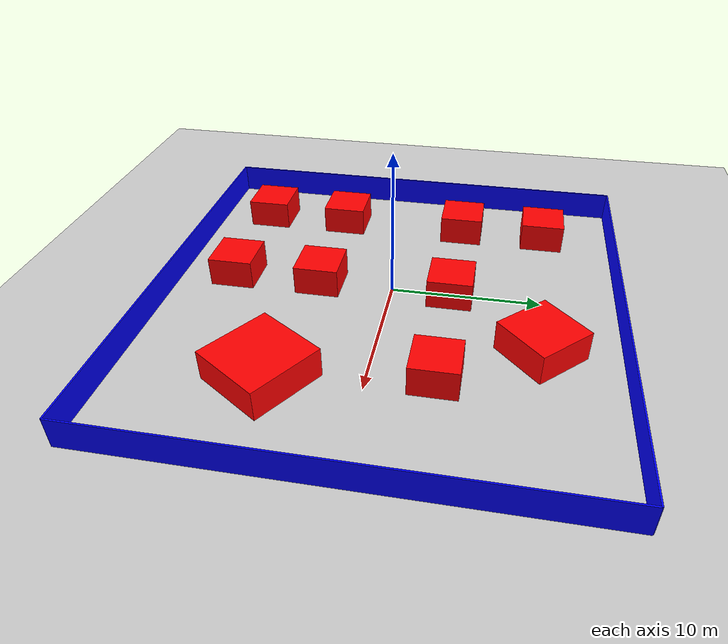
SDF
<sdf version="1.6">
  <world name="empty">
    <physics name="1ms" type="ignored">
      <max_step_size>0.001</max_step_size>
      <real_time_factor>1.0</real_time_factor>
    </physics>
    <plugin
      filename="gz-sim-physics-system"
      name="gz::sim::systems::Physics">
    </plugin>
    <plugin
      filename="gz-sim-user-commands-system"
      name="gz::sim::systems::UserCommands">
    </plugin>
    <plugin
      filename="gz-sim-scene-broadcaster-system"
      name="gz::sim::systems::SceneBroadcaster">
    </plugin>
    <plugin
      filename="gz-sim-contact-system"
      name="gz::sim::systems::Contact">
    </plugin>

    <gui fullscreen="0">

      <!-- 3D scene -->
      <plugin filename="MinimalScene" name="3D View">
        <gz-gui>
          <title>3D View</title>
          <property type="bool" key="showTitleBar">false</property>
          <property type="string" key="state">docked</property>
        </gz-gui>

        <engine>ogre2</engine>
        <scene>scene</scene>
        <ambient_light>0.4 0.4 0.4</ambient_light>
        <background_color>0.8 0.8 0.8</background_color>
        <camera_pose>-6 0 6 0 0.5 0</camera_pose>
      </plugin>

      <plugin filename="GzSceneManager" name="Scene Manager">
        <gz-gui>
          <property key="resizable" type="bool">false</property>
          <property key="width" type="double">5</property>
          <property key="height" type="double">5</property>
          <property key="state" type="string">floating</property>
          <property key="showTitleBar" type="bool">false</property>
        </gz-gui>
      </plugin>
      <plugin filename="InteractiveViewControl" name="Interactive view control">
        <gz-gui>
          <property key="resizable" type="bool">false</property>
          <property key="width" type="double">5</property>
          <property key="height" type="double">5</property>
          <property key="state" type="string">floating</property>
          <property key="showTitleBar" type="bool">false</property>
        </gz-gui>
      </plugin>
      <!-- World control -->
      <plugin filename="WorldControl" name="World control">
        <gz-gui>
          <title>World control</title>
          <property type="bool" key="showTitleBar">false</property>
          <property type="bool" key="resizable">false</property>
          <property type="double" key="height">72</property>
          <property type="double" key="z">1</property>

          <property type="string" key="state">floating</property>
          <anchors target="3D View">
            <line own="left" target="left" />
            <line own="bottom" target="bottom" />
          </anchors>
        </gz-gui>

        <play_pause>true</play_pause>
        <step>true</step>
        <start_paused>true</start_paused>
        <use_event>true</use_event>

      </plugin>

      <!-- World statistics -->
      <plugin filename="WorldStats" name="World stats">
        <gz-gui>
          <title>World stats</title>
          <property type="bool" key="showTitleBar">false</property>
          <property type="bool" key="resizable">false</property>
          <property type="double" key="height">110</property>
          <property type="double" key="width">290</property>
          <property type="double" key="z">1</property>

          <property type="string" key="state">floating</property>
          <anchors target="3D View">
            <line own="right" target="right" />
            <line own="bottom" target="bottom" />
          </anchors>
        </gz-gui>

        <sim_time>true</sim_time>
        <real_time>true</real_time>
        <real_time_factor>true</real_time_factor>
        <iterations>true</iterations>
      </plugin>

      <!-- Grid Config -->
      <plugin filename="GridConfig" name="Grid config">
        <gz-gui>
          <title>Grid Config</title>
        </gz-gui>
      </plugin>
    </gui>

    <light type="directional" name="sun">
      <cast_shadows>true</cast_shadows>
      <pose>0 0 10 0 0 0</pose>
      <diffuse>0.8 0.8 0.8 1</diffuse>
      <specular>0.2 0.2 0.2 1</specular>
      <attenuation>
        <range>1000</range>
        <constant>0.9</constant>
        <linear>0.01</linear>
        <quadratic>0.001</quadratic>
      </attenuation>
      <direction>-0.5 0.1 -0.9</direction>
    </light>

    <model name="ground_plane">
      <static>true</static>
      <link name="link">
        <collision name="collision">
          <geometry>
            <plane>
              <normal>0 0 1</normal>
              <size>100 100</size>
            </plane>
          </geometry>
        </collision>
        <visual name="visual">
          <geometry>
            <plane>
              <normal>0 0 1</normal>
              <size>100 100</size>
            </plane>
          </geometry>
          <material>
            <ambient>0.8 0.8 0.8 1</ambient>
            <diffuse>0.8 0.8 0.8 1</diffuse>
            <specular>0.8 0.8 0.8 1</specular>
          </material>
        </visual>
      </link>
    </model>

     <!-- Adding the wall -->
     <model name="wall_left">
      <static>true</static>
      <link name="link">
        <collision name="collision">
          <geometry>
            <box>
              <size>30 0.1 2</size> <!-- Length, width, height -->
            </box>
          </geometry>
        </collision>
        <visual name="visual">
          <geometry>
            <box>
              <size>30 0.1 2</size> <!-- Length, width, height -->
            </box>
          </geometry>
          <material>
            <ambient>0 0 1 1</ambient>
            <diffuse>0 0 1 1</diffuse>
            <specular>0 0 1 1</specular>
          </material>
        </visual>
        <pose>2 15 1 0 0 0</pose> <!-- Position of the wall -->
      </link>
    </model>

    <model name="wall_right">
      <static>true</static>
      <link name="link">
        <collision name="collision">
          <geometry>
            <box>
              <size>30 0.1 2</size> <!-- Length, width, height -->
            </box>
          </geometry>
        </collision>
        <visual name="visual">
          <geometry>
            <box>
              <size>30 0.1 2</size> <!-- Length, width, height -->
            </box>
          </geometry>
          <material>
            <ambient>0 0 1 1</ambient>
            <diffuse>0 0 1 1</diffuse>
            <specular>0 0 1 1</specular>
          </material>
        </visual>
        <pose>2 -15 1 0 0 0</pose> <!-- Position of the wall -->
      </link>
    </model>

    <model name="wall_behind">
      <static>true</static>
      <link name="link">
        <collision name="collision">
          <geometry>
            <box>
              <size>30 0.1 2</size> <!-- Length, width, height -->
            </box>
          </geometry>
        </collision>
        <visual name="visual">
          <geometry>
            <box>
              <size>30 0.1 2</size> <!-- Length, width, height -->
            </box>
          </geometry>
          <material>
            <ambient>0 0 1 1</ambient>
            <diffuse>0 0 1 1</diffuse>
            <specular>0 0 1 1</specular>
          </material>
        </visual>
        <pose>-13 0 1 0 0 1.5714</pose> <!-- Position of the wall -->
      </link>
    </model>

    <model name="wall_front">
      <static>true</static>
      <link name="link">
        <collision name="collision">
          <geometry>
            <box>
              <size>30 0.1 2</size> <!-- Length, width, height -->
            </box>
          </geometry>
        </collision>
        <visual name="visual">
          <geometry>
            <box>
              <size>30 0.1 2</size> <!-- Length, width, height -->
            </box>
          </geometry>
          <material>
            <ambient>0 0 1 1</ambient>
            <diffuse>0 0 1 1</diffuse>
            <specular>0 0 1 1</specular>
          </material>
        </visual>
        <pose>17 0 1 0 0 1.5714</pose> <!-- Position of the wall -->
      </link>
    </model>

     <!-- Adding the parallelepiped -->
     <model name="parallelepiped1">
      <static>true</static>
      <link name="link">
        <collision name="collision">
          <geometry>
            <box>
              <size>3 3 2</size> <!-- Length, width, height -->
            </box>
          </geometry>
        </collision>
        <visual name="visual">
          <geometry>
            <box>
              <size>3 3 2</size> <!-- Length, width, height -->
            </box>
          </geometry>
          <material>
            <ambient>1 0 0 1</ambient>
            <diffuse>1 0 0 1</diffuse>
            <specular>1 0 0 1</specular>
          </material>
        </visual>
        <!-- Set the pose to position the parallelepiped correctly -->
        <pose>8.5 4 1 0 0 0</pose> <!-- Position: x=4, y=4, z=1 to make bottom face touch ground -->
      </link>
    </model>

    <model name="parallelepiped2">
      <static>true</static>
      <link name="link">
        <collision name="collision">
          <geometry>
            <box>
              <size>3 3 2</size> <!-- Length, width, height -->
            </box>
          </geometry>
        </collision>
        <visual name="visual">
          <geometry>
            <box>
              <size>3 3 2</size> <!-- Length, width, height -->
            </box>
          </geometry>
          <material>
            <ambient>1 0 0 1</ambient>
            <diffuse>1 0 0 1</diffuse>
            <specular>1 0 0 1</specular>
          </material>
        </visual>
        <!-- Set the pose to position the parallelepiped correctly -->
        <pose>0 4 1 0 0 0</pose> <!-- Position: x=4, y=4, z=1 to make bottom face touch ground -->
      </link>
    </model>

    <model name="parallelepiped3">
      <static>true</static>
      <link name="link">
        <collision name="collision">
          <geometry>
            <box>
              <size>3 3 2</size> <!-- Length, width, height -->
            </box>
          </geometry>
        </collision>
        <visual name="visual">
          <geometry>
            <box>
              <size>3 3 2</size> <!-- Length, width, height -->
            </box>
          </geometry>
          <material>
            <ambient>1 0 0 1</ambient>
            <diffuse>1 0 0 1</diffuse>
            <specular>1 0 0 1</specular>
          </material>
        </visual>
        <!-- Set the pose to position the parallelepiped correctly -->
        <pose>-8.5 4 1 0 0 0</pose> <!-- Position: x=4, y=4, z=1 to make bottom face touch ground -->
      </link>
    </model>

    <model name="parallelepiped4">
      <static>true</static>
      <link name="link">
        <collision name="collision">
          <geometry>
            <box>
              <size>3 3 2</size> <!-- Length, width, height -->
            </box>
          </geometry>
        </collision>
        <visual name="visual">
          <geometry>
            <box>
              <size>3 3 2</size> <!-- Length, width, height -->
            </box>
          </geometry>
          <material>
            <ambient>1 0 0 1</ambient>
            <diffuse>1 0 0 1</diffuse>
            <specular>1 0 0 1</specular>
          </material>
        </visual>
        <!-- Set the pose to position the parallelepiped correctly -->
        <pose>-8.5 10 1 0 0 0</pose> <!-- Position: x=4, y=4, z=1 to make bottom face touch ground -->
      </link>
    </model>

    <model name="parallelepiped5">
      <static>true</static>
      <link name="link">
        <collision name="collision">
          <geometry>
            <box>
              <size>3 3 2</size> <!-- Length, width, height -->
            </box>
          </geometry>
        </collision>
        <visual name="visual">
          <geometry>
            <box>
              <size>3 3 2</size> <!-- Length, width, height -->
            </box>
          </geometry>
          <material>
            <ambient>1 0 0 1</ambient>
            <diffuse>1 0 0 1</diffuse>
            <specular>1 0 0 1</specular>
          </material>
        </visual>
        <!-- Set the pose to position the parallelepiped correctly -->
        <pose>-8.5 -5 1 0 0 0</pose> <!-- Position: x=4, y=4, z=1 to make bottom face touch ground -->
      </link>
    </model>

    <model name="parallelepiped6">
      <static>true</static>
      <link name="link">
        <collision name="collision">
          <geometry>
            <box>
              <size>3 3 2</size> <!-- Length, width, height -->
            </box>
          </geometry>
        </collision>
        <visual name="visual">
          <geometry>
            <box>
              <size>3 3 2</size> <!-- Length, width, height -->
            </box>
          </geometry>
          <material>
            <ambient>1 0 0 1</ambient>
            <diffuse>1 0 0 1</diffuse>
            <specular>1 0 0 1</specular>
          </material>
        </visual>
        <!-- Set the pose to position the parallelepiped correctly -->
        <pose>-8.5 -11 1 0 0 0</pose> <!-- Position: x=4, y=4, z=1 to make bottom face touch ground -->
      </link>
    </model>

    <model name="parallelepiped7">
      <static>true</static>
      <link name="link">
        <collision name="collision">
          <geometry>
            <box>
              <size>3 3 2</size> <!-- Length, width, height -->
            </box>
          </geometry>
        </collision>
        <visual name="visual">
          <geometry>
            <box>
              <size>3 3 2</size> <!-- Length, width, height -->
            </box>
          </geometry>
          <material>
            <ambient>1 0 0 1</ambient>
            <diffuse>1 0 0 1</diffuse>
            <specular>1 0 0 1</specular>
          </material>
        </visual>
        <!-- Set the pose to position the parallelepiped correctly -->
        <pose>0 -11 1 0 0 0</pose> <!-- Position: x=4, y=4, z=1 to make bottom face touch ground -->
      </link>
    </model>

    <model name="parallelepiped8">
      <static>true</static>
      <link name="link">
        <collision name="collision">
          <geometry>
            <box>
              <size>3 3 2</size> <!-- Length, width, height -->
            </box>
          </geometry>
        </collision>
        <visual name="visual">
          <geometry>
            <box>
              <size>3 3 2</size> <!-- Length, width, height -->
            </box>
          </geometry>
          <material>
            <ambient>1 0 0 1</ambient>
            <diffuse>1 0 0 1</diffuse>
            <specular>1 0 0 1</specular>
          </material>
        </visual>
        <!-- Set the pose to position the parallelepiped correctly -->
        <pose>0 -5 1 0 0 0</pose> <!-- Position: x=4, y=4, z=1 to make bottom face touch ground -->
      </link>
    </model>

    <model name="parallelepiped9">
      <static>true</static>
      <link name="link">
        <collision name="collision">
          <geometry>
            <box>
              <size>5 5 2</size> <!-- Length, width, height -->
            </box>
          </geometry>
        </collision>
        <visual name="visual">
          <geometry>
            <box>
              <size>5 5 2</size> <!-- Length, width, height -->
            </box>
          </geometry>
          <material>
            <ambient>1 0 0 1</ambient>
            <diffuse>1 0 0 1</diffuse>
            <specular>1 0 0 1</specular>
          </material>
        </visual>
        <!-- Set the pose to position the parallelepiped correctly -->
        <pose>10 -6 1 0 0 1.0</pose> <!-- Position: x=4, y=4, z=1 to make bottom face touch ground -->
      </link>
    </model>

    <model name="parallelepiped10">
      <static>true</static>
      <link name="link">
        <collision name="collision">
          <geometry>
            <box>
              <size>5 5 2</size> <!-- Length, width, height -->
            </box>
          </geometry>
        </collision>
        <visual name="visual">
          <geometry>
            <box>
              <size>5 5 2</size> <!-- Length, width, height -->
            </box>
          </geometry>
          <material>
            <ambient>1 0 0 1</ambient>
            <diffuse>1 0 0 1</diffuse>
            <specular>1 0 0 1</specular>
          </material>
        </visual>
        <!-- Set the pose to position the parallelepiped correctly -->
        <pose>10 -6 1 0 0 1.0</pose> <!-- Position: x=4, y=4, z=1 to make bottom face touch ground -->
      </link>
    </model>

    <model name="parallelepiped11">
      <static>true</static>
      <link name="link">
        <collision name="collision">
          <geometry>
            <box>
              <size>4 4 2</size> <!-- Length, width, height -->
            </box>
          </geometry>
        </collision>
        <visual name="visual">
          <geometry>
            <box>
              <size>4 4 2</size> <!-- Length, width, height -->
            </box>
          </geometry>
          <material>
            <ambient>1 0 0 1</ambient>
            <diffuse>1 0 0 1</diffuse>
            <specular>1 0 0 1</specular>
          </material>
        </visual>
        <!-- Set the pose to position the parallelepiped correctly -->
        <pose>5 10 1 0 0 -0.8</pose> <!-- Position: x=4, y=4, z=1 to make bottom face touch ground -->
      </link>
    </model>

  </world>
</sdf>
